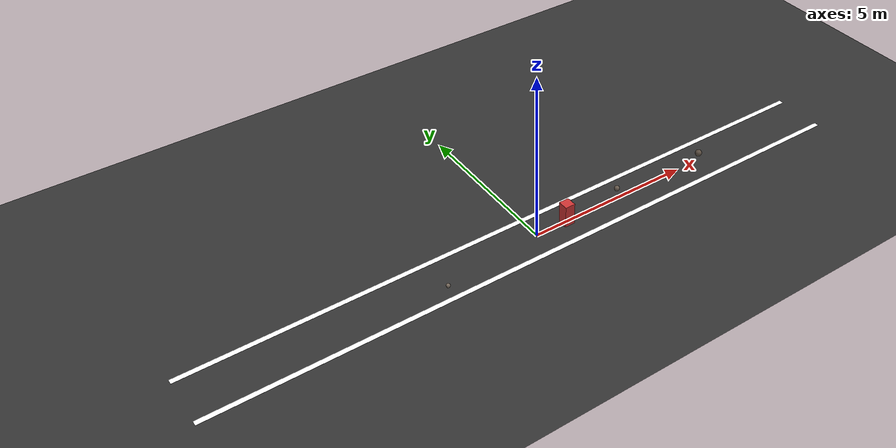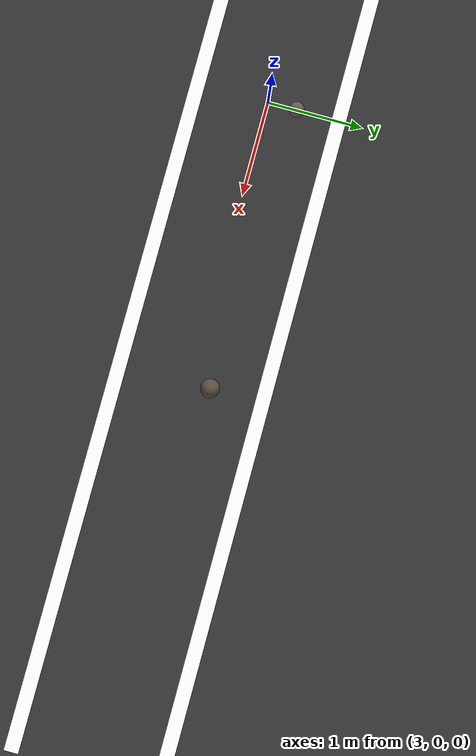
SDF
<?xml version="1.0" ?>
<sdf version="1.8">
  <world name="lane_world">

    <!-- Physics -->
    <physics name="1ms" type="ignored">
      <max_step_size>0.001</max_step_size>
      <real_time_factor>1.0</real_time_factor>
    </physics>

    <!-- Plugins -->
    <plugin filename="gz-sim-physics-system" name="gz::sim::systems::Physics"/>
    <plugin filename="gz-sim-user-commands-system" name="gz::sim::systems::UserCommands"/>
    <plugin filename="gz-sim-scene-broadcaster-system" name="gz::sim::systems::SceneBroadcaster"/>
    <plugin filename="gz-sim-sensors-system" name="gz::sim::systems::Sensors">
      <render_engine>ogre2</render_engine>
    </plugin>
    <plugin filename="gz-sim-imu-system" name="gz::sim::systems::Imu"/>
    <plugin filename="gz-sim-navsat-system" name="gz::sim::systems::NavSat"/>
    <!-- Sun lighting -->
    <light name="sun" type="directional">
      <cast_shadows>true</cast_shadows>
      <pose>0 0 10 0 0 0</pose>
      <diffuse>0.8 0.8 0.8 1</diffuse>
      <specular>0.2 0.2 0.2 1</specular>
      <direction>-0.5 0.1 -0.9</direction>
    </light>

    <!-- Asphalt ground plane -->
    <model name="ground_plane">
      <static>true</static>
      <link name="link">
        <collision name="collision">
          <geometry>
            <plane>
              <normal>0 0 1</normal>
              <size>50 50</size>
            </plane>
          </geometry>
          <surface>
            <friction>
              <ode>
                <mu>0.8</mu>
                <mu2>0.8</mu2>
              </ode>
            </friction>
          </surface>
        </collision>
        <visual name="visual">
          <geometry>
            <plane>
              <normal>0 0 1</normal>
              <size>50 50</size>
            </plane>
          </geometry>
          <material>
            <ambient>0.2 0.2 0.2 1</ambient>
            <diffuse>0.2 0.2 0.2 1</diffuse>
            <specular>0.1 0.1 0.1 1</specular>
          </material>
        </visual>
      </link>
    </model>

    <!-- Left lane marking -->
    <model name="lane_left">
      <static>true</static>
      <pose>0 0.75 0.001 0 0 0</pose>
      <link name="link">
        <visual name="visual">
          <geometry>
            <box><size>20 0.15 0.001</size></box>
          </geometry>
          <material>
            <ambient>1 1 1 1</ambient>
            <diffuse>1 1 1 1</diffuse>
          </material>
        </visual>
      </link>
    </model>

    <!-- Right lane marking -->
    <model name="lane_right">
      <static>true</static>
      <pose>0 -0.75 0.001 0 0 0</pose>
      <link name="link">
        <visual name="visual">
          <geometry>
            <box><size>20 0.15 0.001</size></box>
          </geometry>
          <material>
            <ambient>1 1 1 1</ambient>
            <diffuse>1 1 1 1</diffuse>
          </material>
        </visual>
      </link>
    </model>

    <!-- Rock 1 -->
    <model name="rock1">
      <static>true</static>
      <pose>3 0.3 0.05 0.1 0.2 0.5</pose>
      <link name="link">
        <collision name="collision">
          <geometry><sphere><radius>0.08</radius></sphere></geometry>
        </collision>
        <visual name="visual">
          <geometry><sphere><radius>0.08</radius></sphere></geometry>
          <material>
            <ambient>0.4 0.35 0.3 1</ambient>
            <diffuse>0.4 0.35 0.3 1</diffuse>
          </material>
        </visual>
      </link>
    </model>

    <!-- Rock 2 -->
    <model name="rock2">
      <static>true</static>
      <pose>-3 -0.3 0.04 0.3 0.1 1.2</pose>
      <link name="link">
        <collision name="collision">
          <geometry><sphere><radius>0.06</radius></sphere></geometry>
        </collision>
        <visual name="visual">
          <geometry><sphere><radius>0.06</radius></sphere></geometry>
          <material>
            <ambient>0.45 0.4 0.35 1</ambient>
            <diffuse>0.45 0.4 0.35 1</diffuse>
          </material>
        </visual>
      </link>
    </model>

    <!-- Rock 3 -->
    <model name="rock3">
      <static>true</static>
      <pose>6 0.2 0.06 0.2 0.3 0.8</pose>
      <link name="link">
        <collision name="collision">
          <geometry><sphere><radius>0.1</radius></sphere></geometry>
        </collision>
        <visual name="visual">
          <geometry><sphere><radius>0.1</radius></sphere></geometry>
          <material>
            <ambient>0.35 0.3 0.25 1</ambient>
            <diffuse>0.35 0.3 0.25 1</diffuse>
          </material>
        </visual>
      </link>
    </model>

    <!-- Obstacle box -->
    <model name="obstacle1">
      <static>true</static>
      <pose>1 0 0.15 0 0 0</pose>
      <link name="link">
        <collision name="collision">
          <geometry><box><size>0.3 0.3 1.0</size></box></geometry>
        </collision>
        <visual name="visual">
          <geometry><box><size>0.3 0.3 1.0</size></box></geometry>
          <material>
            <ambient>0.8 0.2 0.2 1</ambient>
            <diffuse>0.8 0.2 0.2 1</diffuse>
          </material>
        </visual>
      </link>
    </model>

  <!-- realistic spherical world for gps -->
  <spherical_coordinates>
    <surface_model>EARTH_WGS84</surface_model>
    <latitude_deg>30.0444</latitude_deg>
    <longitude_deg>31.2357</longitude_deg>
    <elevation>74.0</elevation>
    <heading_deg>0</heading_deg>
  </spherical_coordinates>
  </world>
</sdf>
